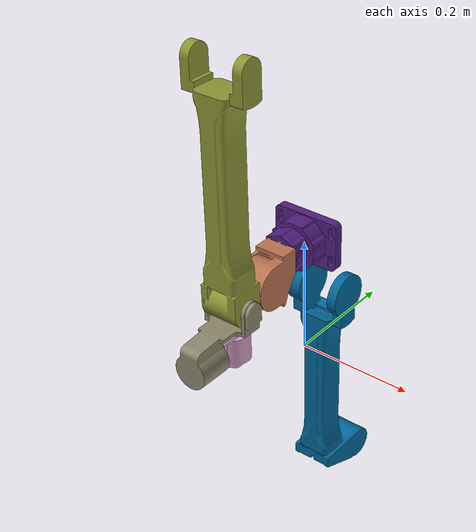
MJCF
<mujoco model="yam">
  <compiler angle="radian" meshdir="assets"/>

  <asset>
    <mesh name="base"  file="base.stl"/>
    <mesh name="link1" file="link1.stl"/>
    <mesh name="link2" file="link2.stl"/>
    <mesh name="link3" file="link3.stl"/>
    <mesh name="link4" file="link4.stl"/>
    <mesh name="link5" file="link5.stl"/>
  </asset>

  <worldbody>
    <body name="base" pos="0 0 0" quat="1 0 0 0">
      <inertial pos="-3.83908653914762e-05 2.40068589826393e-05 0.0247677998591499" quat="0.49938139958418276 0.50073986942030346 -0.50008702432797014 -0.49979072522514489" mass="0.873654" diaginertia="0.00067830593494507463 0.0015705906697095877 0.0016940403953453369"/>
      <geom pos="0.0374957408313106 0.0464006377298596 0.187501137731438" quat="-1.29867173464042e-06 -0.707108079858281 -1.29867650493682e-06 0.707105482510044" type="mesh" rgba="0.317647 0.121569 0.498039 1" mesh="base"/>
      <body name="link1" pos="-2.49777947129965e-07 -9.17402363407408e-13 0.0679999999995413" quat="-1.29867173464042e-06 -0.707108079858281 -1.29867650493682e-06 0.707105482510044">
        <inertial pos="-0.0233636 -0.00172503 -0.00727828" quat="0.64524361769733818 0.21204348917963084 -0.19681281961670499 -0.70708057995669871" mass="0.101218" diaginertia="4.7181498384517786e-05 0.00010625072855078136 0.0001349130730647009"/>
        <joint name="joint1" pos="0 0 0" axis="-1 0 0" type="hinge" range="-2.61799 3.14159" actuatorfrcrange="-10 10"/>
        <geom pos="-0.119501 -0.0464 -0.0374968" quat="1 0 0 0" type="mesh" rgba="0.72549 0.45098 0.317647 1" mesh="link1"/>
        <body name="link2" pos="-0.0455 -0.0339 -0.02" quat="1.32679489667753e-06 2.77554809002317e-17 8.97650368259094e-17 -0.99999999999912">
          <inertial pos="0.000134495 -0.0331253 0.129165" quat="2.3368140745090919e-05 -0.70711781940433771 0.00013679930974081874 -0.70709572917726871" mass="1.46908" diaginertia="0.00080008827848097137 0.014599000706208605 0.014668600015310418"/>
          <joint name="joint2" pos="0 0 0" axis="3.58252e-15 1 -3.2007e-16" type="hinge" range="-8.88178e-16 3.66519" actuatorfrcrange="-10 10"/>
          <geom pos="-0.0740001 -0.08025 -0.0174977" quat="1 0 0 0" type="mesh" rgba="0 0.4 0.6 1" mesh="link2"/>
          <body name="link3" pos="4.08431e-07 -0.0688 0.264" quat="1.32679489667753e-06 -8.00751986887921e-15 1.49750893756767e-14 -0.99999999999912">
            <inertial pos="-0.0556042 -0.0340514 -0.135083" quat="0.6673095083601458 -0.084819836562637807 0.734174327973797 0.092150265989044466" mass="0.982553" diaginertia="0.00087644191886574482 0.0076296046064632606 0.0076519794746709975"/>
            <joint name="joint3" pos="0 0 0" axis="4.54273e-15 1 1.04275e-14" type="hinge" range="0 3.14159" actuatorfrcrange="-10 10"/>
            <geom pos="-0.0740003 -0.0813 -0.281499" quat="1 0 0 0" type="mesh" rgba="0.552941 0.580392 0.203922 1" mesh="link3"/>
            <body name="link4" pos="-0.0600003 -0.0688 -0.244999" quat="1 1.47768000000004e-14 4.26186999999998e-14 -1.05292500000006e-14">
              <inertial pos="-0.0550959 0.032726 -0.0575534" quat="0.10060722133102602 0.94108569945662945 -0.079755596579730484 0.31284970530350165" mass="0.462165" diaginertia="0.00028778996544839548 0.00076643008992378317 0.00078788794462782174"/>
              <joint name="joint4" pos="0 0 0" axis="0 1 0" type="hinge" range="-1.69297 1.5708" actuatorfrcrange="-10 10"/>
              <geom pos="-0.0140003 -0.0125 -0.0364989" quat="1 0 0 0" type="mesh" rgba="0.545098 0.52549 0.419608 1" mesh="link4"/>
              <body name="link5" pos="-0.0405003 0.0338995 -0.0739989" quat="1 1.36632e-14 -2.16478000000001e-16 -4.1633349999997e-17">
                <inertial pos="0.0375847 -3.55003e-05 -0.000825911" quat="0.64668614070190811 0.64239183561513957 0.28865586152813083 -0.29292927229031912" mass="0.403307" diaginertia="0.00016964735642963316 0.00019568620481229821 0.00021979443875806869"/>
                <joint name="joint5" pos="0 0 0" axis="1 0 0" type="hinge" range="-1.5708 1.5708" actuatorfrcrange="-10 10"/>
                <geom pos="0.0265 -0.0463995 0.0375" quat="1 0 0 0" type="mesh" rgba="0.827451 0.623529 0.784314 1" mesh="link5"/>
                <body name="link6" pos="0.0404996 2.39858e-07 -0.0356" quat="1 4.41654500000011e-16 -2.94293999999983e-16 3.849305e-14">
                  <inertial pos="0 0 0" mass="1e-6" diaginertia="1e-9 1e-9 1e-9"/>
                  <joint name="joint6" pos="0 0 0" axis="1.46014e-15 2.40808e-14 -1" type="hinge" range="-2.0944 2.0944" actuatorfrcrange="-10 10"/>
                </body>
              </body>
            </body>
          </body>
        </body>
      </body>
    </body>
  </worldbody>
</mujoco>
